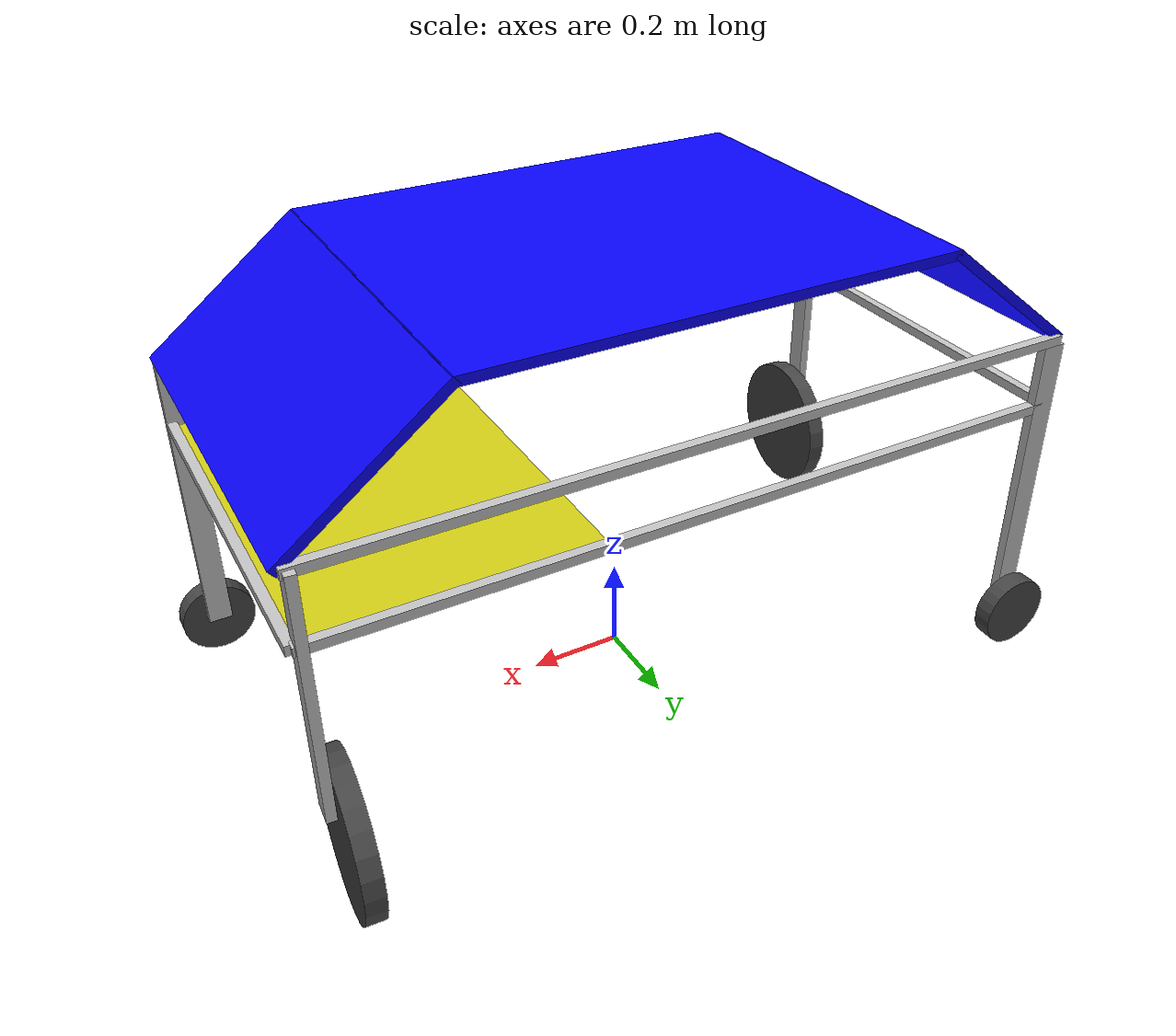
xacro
<?xml version="1.0" encoding="utf-8"?>
<!-- |    This document was autogenerated by xacro from agrobot_diagonal_wheels_angular.xacro | -->
<!-- |    EDITING THIS FILE BY HAND IS NOT RECOMMENDED                                 | -->
<robot name="agro">
  <link name="base_footprint">
    </link>
  <!-- BASE LINK -->
  <link name="base_link">
    <visual name="solar_panel_back">
      <origin rpy="0 -0.66 0" xyz="-0.65 0 0.86"/>
      <geometry>
        <box size="0.4 0.8 0.02"/>
      </geometry>
      <material name="blue">
        <color rgba="0.03 0.01 0.97 1"/>
      </material>
    </visual>
    <collision name="solar_panel_back">
      <origin rpy="0 -0.66 0" xyz="-0.65 0 0.86"/>
      <geometry>
        <box size="0.4 0.8 0.02"/>
      </geometry>
    </collision>
    <visual name="solar_panel_big">
      <origin rpy="0 0 0" xyz="0 0 0.98"/>
      <geometry>
        <box size="1 0.8 0.02"/>
      </geometry>
      <material name="blue">
        <color rgba="0.03 0.01 0.97 1"/>
      </material>
    </visual>
    <collision name="solar_panel_big">
      <origin rpy="0 0 0" xyz="0 0 0.98"/>
      <geometry>
        <box size="1 0.8 0.02"/>
      </geometry>
    </collision>
    <visual name="solar_panel_forward">
      <origin rpy="0 0.66 0" xyz="0.65 0 0.86"/>
      <geometry>
        <box size="0.4 0.8 0.02"/>
      </geometry>
      <material name="blue">
        <color rgba="0.03 0.01 0.97 1"/>
      </material>
    </visual>
    <collision name="solar_panel_forward">
      <origin rpy="0 0.66 0" xyz="0.65 0 0.86"/>
      <geometry>
        <box size="0.4 0.8 0.02"/>
      </geometry>
    </collision>
    <visual name="frame1">
      <origin rpy="0 0 0" xyz="0. 0.4 0.74"/>
      <geometry>
        <box size="1.6 0.02 0.02"/>
      </geometry>
      <material name="gray">
        <color rgba="0.76 0.76 0.76 1"/>
      </material>
    </visual>
    <collision name="frame1">
      <origin rpy="0 0 0" xyz="0. 0.4 0.74"/>
      <geometry>
        <box size="1.6 0.02 0.02"/>
      </geometry>
    </collision>
    <visual name="frame2">
      <origin rpy="0 0 0" xyz="0. -0.4 0.74"/>
      <geometry>
        <box size="1.6 0.02 0.02"/>
      </geometry>
      <material name="gray">
        <color rgba="0.76 0.76 0.76 1"/>
      </material>
    </visual>
    <collision name="frame2">
      <origin rpy="0 0 0" xyz="0. -0.4 0.74"/>
      <geometry>
        <box size="1.6 0.02 0.02"/>
      </geometry>
    </collision>
    <visual name="frame3">
      <origin rpy="0 0 0" xyz="0. 0.4 0.59"/>
      <geometry>
        <box size="1.6 0.02 0.02"/>
      </geometry>
      <material name="gray">
        <color rgba="0.76 0.76 0.76 1"/>
      </material>
    </visual>
    <collision name="frame3">
      <origin rpy="0 0 0" xyz="0. 0.4 0.59"/>
      <geometry>
        <box size="1.6 0.02 0.02"/>
      </geometry>
    </collision>
    <visual name="frame_center">
      <origin rpy="0 0 0" xyz="0.51 0 0.59"/>
      <geometry>
        <box size="0.56 0.8 0.001"/>
      </geometry>
      <material name="yellow">
        <color rgba="0.82 0.8 0.08 1"/>
      </material>
    </visual>
    <collision name="frame_center">
      <origin rpy="0 0 0" xyz="0.51 0 0.59"/>
      <geometry>
        <box size="0.56 0.8 0.001"/>
      </geometry>
    </collision>
    <visual name="frame4">
      <origin rpy="0 0 0" xyz="0. -0.4 0.59"/>
      <geometry>
        <box size="1.6 0.02 0.02"/>
      </geometry>
      <material name="gray">
        <color rgba="0.76 0.76 0.76 1"/>
      </material>
    </visual>
    <collision name="frame4">
      <origin rpy="0 0 0" xyz="0. -0.4 0.59"/>
      <geometry>
        <box size="1.6 0.02 0.02"/>
      </geometry>
    </collision>
    <visual name="frame5">
      <origin rpy="0 0 0" xyz="0.8 0 0.59"/>
      <geometry>
        <box size="0.02 0.8 0.02"/>
      </geometry>
      <material name="gray">
        <color rgba="0.76 0.76 0.76 1"/>
      </material>
    </visual>
    <collision name="frame5">
      <origin rpy="0 0 0" xyz="0.8 0 0.59"/>
      <geometry>
        <box size="0.02 0.8 0.02"/>
      </geometry>
    </collision>
    <visual name="frame6">
      <origin rpy="0 0 0" xyz="-0.8 0 0.59"/>
      <geometry>
        <box size="0.02 0.8 0.02"/>
      </geometry>
      <material name="gray">
        <color rgba="0.76 0.76 0.76 1"/>
      </material>
    </visual>
    <collision name="frame6">
      <origin rpy="0 0 0" xyz="-0.8 0 0.59"/>
      <geometry>
        <box size="0.02 0.8 0.02"/>
      </geometry>
    </collision>
    <visual name="frame_wheel_b_l">
      <origin rpy="0 0 0" xyz="-0.785 0.4 0.41"/>
      <geometry>
        <box size="0.05 0.02 0.64"/>
      </geometry>
      <material name="gray">
        <color rgba="0.76 0.76 0.76 1"/>
      </material>
    </visual>
    <collision name="frame_wheel_b_l">
      <origin rpy="0 0 0" xyz="-0.785 0.4 0.41"/>
      <geometry>
        <box size="0.05 0.02 0.64"/>
      </geometry>
    </collision>
    <visual name="frame_wheel_f_r">
      <origin rpy="0 0 0" xyz="0.785 -0.4 0.41"/>
      <geometry>
        <box size="0.05 0.02 0.64"/>
      </geometry>
      <material name="gray">
        <color rgba="0.76 0.76 0.76 1"/>
      </material>
    </visual>
    <collision name="frame_wheel_f_r">
      <origin rpy="0 0 0" xyz="0.785 -0.4 0.41"/>
      <geometry>
        <box size="0.05 0.02 0.64"/>
      </geometry>
    </collision>
    <collision>
      <origin rpy="0 0 0" xyz="0.0 0.0 0.85"/>
      <geometry>
        <box size="1 0.8 0.25"/>
      </geometry>
    </collision>
    <inertial>
      <origin rpy="0.0 0.0 0.0" xyz="0.0 0.0 0.0"/>
      <mass value="40.0"/>
      <inertia ixx="11.7346" ixy="0.0" ixz="0.0" iyy="9.06" iyz="0.0" izz="3.73"/>
    </inertial>
  </link>
  <joint name="base_joint" type="fixed">
    <origin rpy="0.0 0.0 0.0" xyz="0.0 0.0 0.0"/>
    <parent link="base_footprint"/>
    <child link="base_link"/>
    <axis xyz="0.0 0.0 0.0"/>
  </joint>
  <link name="frame_wheel_forward_left">
    <visual name="frame_wheel_b_r">
      <geometry>
        <box size="0.05 0.02 0.52"/>
      </geometry>
      <material name="gray">
        <color rgba="0.76 0.76 0.76 1"/>
      </material>
    </visual>
    <collision>
      <geometry>
        <box size="0.05 0.02 0.52"/>
      </geometry>
    </collision>

            v
    <inertial>
      <origin rpy="0.0 0.0 0.0" xyz="0.0 0.0 0.0"/>
      <mass value="1.0"/>
      <inertia ixx="0.0227417" ixy="0.0" ixz="0.0" iyy="0.000241667" iyz="0.0" izz="0.0225667"/>
    </inertial>
  </link>
  <!-- revolute continuous -->
  <joint name="frame_wheel_forward_left_joint" type="revolute">
    <origin rpy="0.0 0.0 0.0" xyz="0.785 0.4 0.485"/>
    <parent link="base_link"/>
    <child link="frame_wheel_forward_left"/>
    <axis xyz="0.0 0.0 1.0"/>
    <limit effort="100.0" lower="1.0" upper="2.0" velocity="1.57"/>
  </joint>
  <link name="frame_wheel_back_right">
    <visual name="frame_wheel_b_r">
      <geometry>
        <box size="0.05 0.02 0.52"/>
      </geometry>
      <material name="gray">
        <color rgba="0.76 0.76 0.76 1"/>
      </material>
    </visual>
    <collision>
      <geometry>
        <box size="0.05 0.02 0.52"/>
      </geometry>
    </collision>

            v
    <inertial>
      <origin rpy="0.0 0.0 0.0" xyz="0.0 0.0 0.0"/>
      <mass value="1.0"/>
      <inertia ixx="0.0227417" ixy="0.0" ixz="0.0" iyy="0.000241667" iyz="0.0" izz="0.0225667"/>
    </inertial>
  </link>
  <!-- revolute continuous -->
  <joint name="frame_wheel_back_right_joint" type="revolute">
    <origin rpy="0.0 0.0 0.0" xyz="-0.785 -0.4 0.485"/>
    <parent link="base_link"/>
    <child link="frame_wheel_back_right"/>
    <axis xyz="0.0 0.0 1.0"/>
    <limit effort="100.0" lower="1.0" upper="2.0" velocity="1.57"/>
  </joint>
  <!-- swivel frame end -->
  <!-- WHEEL -->
  <link name="wheel_forward_left_link">
    <inertial>
      <origin rpy="0.0 0.0 0.0" xyz="0.0 0.0 0.0"/>
      <mass value="4.1"/>
      <inertia ixx="0.0267867" ixy="0.0" ixz="0.0" iyy="0.0267867" iyz="0.0" izz="2.10248"/>
    </inertial>
    <visual name="wheel_b">
      <geometry>
        <cylinder length="0.04" radius="0.16"/>
      </geometry>
      <material name="black">
        <color rgba="0.27 0.27 0.27 1"/>
      </material>
    </visual>
    <collision>
      <geometry>
        <cylinder length="0.04" radius="0.16"/>
      </geometry>
      <material name="black">
        <color rgba="0.27 0.27 0.27 1"/>
      </material>
    </collision>
  </link>
  <joint name="wheel_forward_left_joint" type="continuous">
    <origin rpy="-1.57 0 0" xyz="0.0 0.03 -0.325"/>
    <parent link="frame_wheel_forward_left"/>
    <child link="wheel_forward_left_link"/>
    <axis xyz="0.0 0.0 1.0"/>
  </joint>
  <link name="wheel_back_right_link">
    <inertial>
      <origin rpy="0.0 0.0 0.0" xyz="0.0 0.0 0.0"/>
      <mass value="4.1"/>
      <inertia ixx="0.0267867" ixy="0.0" ixz="0.0" iyy="0.0267867" iyz="0.0" izz="2.10248"/>
    </inertial>
    <visual name="wheel_b">
      <geometry>
        <cylinder length="0.04" radius="0.16"/>
      </geometry>
      <material name="black">
        <color rgba="0.27 0.27 0.27 1"/>
      </material>
    </visual>
    <collision>
      <geometry>
        <cylinder length="0.04" radius="0.16"/>
      </geometry>
      <material name="black">
        <color rgba="0.27 0.27 0.27 1"/>
      </material>
    </collision>
  </link>
  <joint name="wheel_back_right_joint" type="continuous">
    <origin rpy="-1.57 0 0" xyz="0.0 -0.03 -0.325"/>
    <parent link="frame_wheel_back_right"/>
    <child link="wheel_back_right_link"/>
    <axis xyz="0.0 0.0 1.0"/>
  </joint>
  <link name="wheel_forward_right_link">
    <inertial>
      <origin rpy="0.0 0.0 0.0" xyz="0.0 0.0 0.0"/>
      <mass value="2.7"/>
      <inertia ixx="1.086912" ixy="0.0" ixz="0.0" iyy="1.086912" iyz="0.0" izz="1.086912"/>
    </inertial>
    <visual name="wheel_l">
      <geometry>
        <cylinder length="0.04" radius="0.08"/>
      </geometry>
      <material name="black">
        <color rgba="0.27 0.27 0.27 1"/>
      </material>
    </visual>
    <collision>
      <geometry>
        <sphere radius="0.08"/>
        <!-- length="0.04" -->
      </geometry>
      <material name="black">
        <color rgba="0.27 0.27 0.27 1"/>
      </material>
    </collision>
  </link>
  <joint name="wheel_forward_right_joint" type="continuous">
    <origin rpy="-1.57 0 0" xyz="0.785 -0.43 0.08"/>
    <parent link="base_link"/>
    <child link="wheel_forward_right_link"/>
    <axis xyz="0.0 0.0 1.0"/>
  </joint>
  <gazebo reference="wheel_forward_right_link">
    <mu1 value="0.0001"/>
    <mu2 value="0.0001"/>
  </gazebo>
  <link name="wheel_back_left_link">
    <inertial>
      <origin rpy="0.0 0.0 0.0" xyz="0.0 0.0 0.0"/>
      <mass value="2.7"/>
      <inertia ixx="1.086912" ixy="0.0" ixz="0.0" iyy="1.086912" iyz="0.0" izz="1.086912"/>
    </inertial>
    <visual name="wheel_l">
      <geometry>
        <cylinder length="0.04" radius="0.08"/>
      </geometry>
      <material name="black">
        <color rgba="0.27 0.27 0.27 1"/>
      </material>
    </visual>
    <collision>
      <geometry>
        <sphere radius="0.08"/>
        <!-- length="0.04" -->
      </geometry>
      <material name="black">
        <color rgba="0.27 0.27 0.27 1"/>
      </material>
    </collision>
  </link>
  <joint name="wheel_back_left_joint" type="continuous">
    <origin rpy="-1.57 0 0" xyz="-0.785 0.43 0.08"/>
    <parent link="base_link"/>
    <child link="wheel_back_left_link"/>
    <axis xyz="0.0 0.0 1.0"/>
  </joint>
  <gazebo reference="wheel_back_left_link">
    <mu1 value="0.0001"/>
    <mu2 value="0.0001"/>
  </gazebo>
  <!-- WHEEL END -->
</robot>
